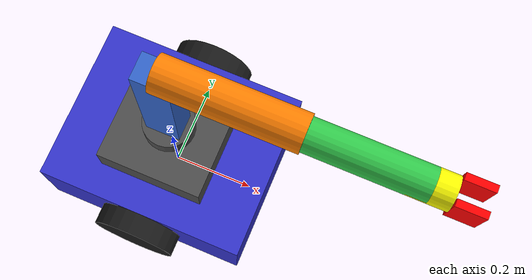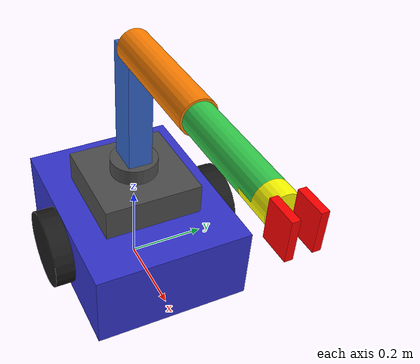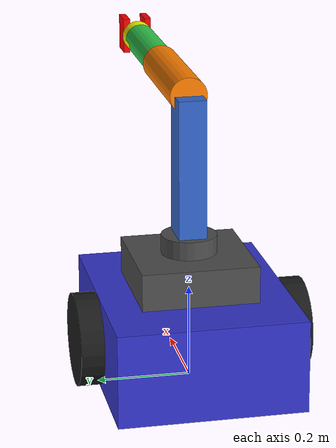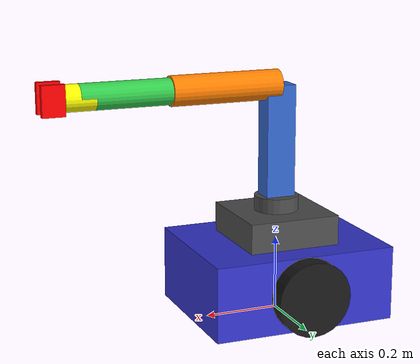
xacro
<?xml version="1.0"?>
<robot xmlns:xacro="http://ros.org/wiki/xacro" name="mobile_simple_arm">

  <!-- Inclure le bras -->
  <xacro:include filename="$(find mobile_manipulator_sim)/urdf/simple_arm.urdf.xacro"/>

  <!-- Base footprint -->
  <link name="base_footprint">
    <inertial>
      <mass value="0.1"/>
      <inertia ixx="0.001" ixy="0" ixz="0" iyy="0.001" iyz="0" izz="0.001"/>
    </inertial>
  </link>

  <!-- Base link -->
  <link name="base_link">
    <visual>
      <geometry>
        <box size="0.5 0.4 0.2"/>
      </geometry>
      <material name="blue">
        <color rgba="0.2 0.2 0.8 1.0"/>
      </material>
    </visual>
    <collision>
      <geometry>
        <box size="0.5 0.4 0.2"/>
      </geometry>
    </collision>
    <inertial>
      <mass value="50.0"/>
      <origin xyz="0 0 0"/>
      <inertia ixx="5.0" ixy="0.0" ixz="0.0" iyy="5.0" iyz="0.0" izz="5.0"/>
    </inertial>
  </link>

  <joint name="base_joint" type="fixed">
    <parent link="base_footprint"/>
    <child link="base_link"/>
    <origin xyz="0 0 0.1" rpy="0 0 0"/>
  </joint>

  <!-- Roue gauche -->
  <link name="left_wheel">
    <visual>
      <geometry>
        <cylinder radius="0.1" length="0.05"/>
      </geometry>
      <material name="black">
        <color rgba="0.1 0.1 0.1 1.0"/>
      </material>
    </visual>
    <collision>
      <geometry>
        <cylinder radius="0.1" length="0.05"/>
      </geometry>
    </collision>
    <inertial>
      <mass value="1.0"/>
      <inertia ixx="0.0051" ixy="0.0" ixz="0.0" iyy="0.0051" iyz="0.0" izz="0.01"/>
    </inertial>
  </link>

  <joint name="left_wheel_joint" type="fixed">
    <parent link="base_link"/>
    <child link="left_wheel"/>
    <origin xyz="0 0.225 0" rpy="-1.5707963267948966 0 0"/>
  </joint>

  <!-- Roue droite -->
  <link name="right_wheel">
    <visual>
      <geometry>
        <cylinder radius="0.1" length="0.05"/>
      </geometry>
      <material name="black">
        <color rgba="0.1 0.1 0.1 1.0"/>
      </material>
    </visual>
    <collision>
      <geometry>
        <cylinder radius="0.1" length="0.05"/>
      </geometry>
    </collision>
    <inertial>
      <mass value="1.0"/>
      <inertia ixx="0.0051" ixy="0.0" ixz="0.0" iyy="0.0051" iyz="0.0" izz="0.01"/>
    </inertial>
  </link>

  <joint name="right_wheel_joint" type="fixed">
    <parent link="base_link"/>
    <child link="right_wheel"/>
    <origin xyz="0 -0.225 0" rpy="-1.5707963267948966 0 0"/>
  </joint>

  <!-- Roue folle -->
  <link name="caster_wheel">
    <visual>
      <geometry>
        <sphere radius="0.05"/>
      </geometry>
      <material name="grey">
        <color rgba="0.5 0.5 0.5 1.0"/>
      </material>
    </visual>
    <collision>
      <geometry>
        <sphere radius="0.05"/>
      </geometry>
    </collision>
    <inertial>
      <mass value="0.5"/>
      <inertia ixx="0.0005" ixy="0.0" ixz="0.0" iyy="0.0005" iyz="0.0" izz="0.0005"/>
    </inertial>
  </link>

  <joint name="caster_joint" type="fixed">
    <parent link="base_link"/>
    <child link="caster_wheel"/>
    <origin xyz="0.2 0 -0.05" rpy="0 0 0"/>
  </joint>

  <!-- Plateforme pour le bras -->
  <link name="arm_mount_plate">
    <visual>
      <geometry>
        <box size="0.25 0.25 0.08"/>
      </geometry>
      <material name="dark_grey">
        <color rgba="0.3 0.3 0.3 1.0"/>
      </material>
    </visual>
    <collision>
      <geometry>
        <box size="0.25 0.25 0.08"/>
      </geometry>
    </collision>
    <inertial>
      <mass value="3.0"/>
      <inertia ixx="0.05" ixy="0.0" ixz="0.0" iyy="0.05" iyz="0.0" izz="0.05"/>
    </inertial>
  </link>

  <joint name="arm_mount_joint" type="fixed">
    <parent link="base_link"/>
    <child link="arm_mount_plate"/>
    <origin xyz="0 0 0.14" rpy="0 0 0"/>
  </joint>

  <!-- Instancier le bras -->
  <xacro:simple_arm prefix="" parent="arm_mount_plate">
    <origin xyz="0 0 0.04" rpy="0 0 0"/>
  </xacro:simple_arm>

  <!-- Gazebo colors -->
  <gazebo reference="base_link">
    <material>Gazebo/Blue</material>
    <mu1>1.0</mu1>
    <mu2>1.0</mu2>
    <kp>10000000.0</kp>
    <kd>100.0</kd>
  </gazebo>

  <gazebo reference="arm_mount_plate">
    <material>Gazebo/DarkGrey</material>
  </gazebo>

  <gazebo reference="left_wheel">
    <material>Gazebo/Black</material>
    <mu1>1.0</mu1>
    <mu2>1.0</mu2>
  </gazebo>

  <gazebo reference="right_wheel">
    <material>Gazebo/Black</material>
    <mu1>1.0</mu1>
    <mu2>1.0</mu2>
  </gazebo>

  <gazebo reference="caster_wheel">
    <material>Gazebo/Grey</material>
    <mu1>1.0</mu1>
    <mu2>1.0</mu2>
  </gazebo>

</robot>

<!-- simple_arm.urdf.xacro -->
<robot xmlns:xacro="http://ros.org/wiki/xacro">

  <xacro:macro name="simple_arm" params="prefix parent *origin">

    <!-- Base du bras -->
    <joint name="${prefix}arm_base_joint" type="fixed">
      <xacro:insert_block name="origin"/>
      <parent link="${parent}"/>
      <child link="${prefix}arm_base_link"/>
    </joint>

    <link name="${prefix}arm_base_link">
      <visual>
        <geometry>
          <cylinder radius="0.06" length="0.08"/>
        </geometry>
        <material name="dark_grey">
          <color rgba="0.3 0.3 0.3 1.0"/>
        </material>
      </visual>
      <collision>
        <geometry>
          <cylinder radius="0.06" length="0.08"/>
        </geometry>
      </collision>
      <inertial>
        <mass value="2.0"/>
        <inertia ixx="0.01" ixy="0.0" ixz="0.0" iyy="0.01" iyz="0.0" izz="0.01"/>
      </inertial>
    </link>

    <!-- Joint rotation base -->
    <joint name="${prefix}shoulder_pan_joint" type="revolute">
      <parent link="${prefix}arm_base_link"/>
      <child link="${prefix}shoulder_link"/>
      <origin xyz="0 0 0.04" rpy="0 0 0"/>
      <axis xyz="0 0 1"/>
      <limit lower="-3.14" upper="3.14" effort="50.0" velocity="1.0"/>
      <dynamics damping="0.7"/>
    </joint>

    <!-- Épaule -->
    <link name="${prefix}shoulder_link">
      <visual>
        <origin xyz="0 0 0.15" rpy="0 0 0"/>
        <geometry>
          <box size="0.08 0.06 0.3"/>
        </geometry>
        <material name="blue">
          <color rgba="0.2 0.4 0.8 1.0"/>
        </material>
      </visual>
      <collision>
        <origin xyz="0 0 0.15" rpy="0 0 0"/>
        <geometry>
          <box size="0.08 0.06 0.3"/>
        </geometry>
      </collision>
      <inertial>
        <mass value="3.0"/>
        <origin xyz="0 0 0.15"/>
        <inertia ixx="0.03" ixy="0.0" ixz="0.0" iyy="0.03" iyz="0.0" izz="0.005"/>
      </inertial>
    </link>

    <!-- Joint épaule -->
    <joint name="${prefix}shoulder_lift_joint" type="revolute">
      <parent link="${prefix}shoulder_link"/>
      <child link="${prefix}upper_arm_link"/>
      <origin xyz="0 0 0.3" rpy="0 0 0"/>
      <axis xyz="0 1 0"/>
      <limit lower="-1.57" upper="1.57" effort="50.0" velocity="1.0"/>
      <dynamics damping="0.7"/>
    </joint>

    <!-- Bras supérieur -->
    <link name="${prefix}upper_arm_link">
      <visual>
        <origin xyz="0.15 0 0" rpy="0 1.5707 0"/>
        <geometry>
          <cylinder radius="0.04" length="0.30"/>
        </geometry>
        <material name="orange">
          <color rgba="1.0 0.5 0.0 1.0"/>
        </material>
      </visual>
      <collision>
        <origin xyz="0.15 0 0" rpy="0 1.5707 0"/>
        <geometry>
          <cylinder radius="0.04" length="0.30"/>
        </geometry>
      </collision>
      <inertial>
        <mass value="2.5"/>
        <origin xyz="0.15 0 0"/>
        <inertia ixx="0.01" ixy="0.0" ixz="0.0" iyy="0.02" iyz="0.0" izz="0.02"/>
      </inertial>
    </link>

    <!-- Joint coude -->
    <joint name="${prefix}elbow_joint" type="revolute">
      <parent link="${prefix}upper_arm_link"/>
      <child link="${prefix}forearm_link"/>
      <origin xyz="0.30 0 0" rpy="0 0 0"/>
      <axis xyz="0 1 0"/>
      <limit lower="-1.57" upper="1.57" effort="30.0" velocity="1.0"/>
      <dynamics damping="0.5"/>
    </joint>

    <!-- Avant-bras -->
    <link name="${prefix}forearm_link">
      <visual>
        <origin xyz="0.12 0 0" rpy="0 1.5707 0"/>
        <geometry>
          <cylinder radius="0.035" length="0.24"/>
        </geometry>
        <material name="green">
          <color rgba="0.2 0.8 0.3 1.0"/>
        </material>
      </visual>
      <collision>
        <origin xyz="0.12 0 0" rpy="0 1.5707 0"/>
        <geometry>
          <cylinder radius="0.035" length="0.24"/>
        </geometry>
      </collision>
      <inertial>
        <mass value="1.5"/>
        <origin xyz="0.12 0 0"/>
        <inertia ixx="0.005" ixy="0.0" ixz="0.0" iyy="0.01" iyz="0.0" izz="0.01"/>
      </inertial>
    </link>

    <!-- Joint poignet -->
    <joint name="${prefix}wrist_joint" type="revolute">
      <parent link="${prefix}forearm_link"/>
      <child link="${prefix}wrist_link"/>
      <origin xyz="0.24 0 0" rpy="0 0 0"/>
      <axis xyz="1 0 0"/>
      <limit lower="-1.57" upper="1.57" effort="20.0" velocity="1.0"/>
      <dynamics damping="0.5"/>
    </joint>

    <!-- Poignet -->
    <link name="${prefix}wrist_link">
      <visual>
        <origin xyz="0 0 0" rpy="0 1.5707 0"/>
        <geometry>
          <cylinder radius="0.035" length="0.08"/>
        </geometry>
        <material name="yellow">
          <color rgba="1.0 1.0 0.0 1.0"/>
        </material>
      </visual>
      <collision>
        <origin xyz="0 0 0" rpy="0 1.5707 0"/>
        <geometry>
          <cylinder radius="0.035" length="0.08"/>
        </geometry>
      </collision>
      <inertial>
        <mass value="0.8"/>
        <inertia ixx="0.001" ixy="0" ixz="0" iyy="0.001" iyz="0" izz="0.001"/>
      </inertial>
    </link>

    <!-- Gripper gauche -->
    <joint name="${prefix}finger_left_joint" type="prismatic">
      <parent link="${prefix}wrist_link"/>
      <child link="${prefix}finger_left"/>
      <origin xyz="0.04 0.025 0" rpy="0 0 0"/>
      <axis xyz="0 1 0"/>
      <limit lower="0.0" upper="0.03" effort="10.0" velocity="0.5"/>
      <dynamics damping="0.3"/>
    </joint>

    <link name="${prefix}finger_left">
      <visual>
        <origin xyz="0.03 0 0" rpy="0 0 0"/>
        <geometry>
          <box size="0.06 0.015 0.08"/>
        </geometry>
        <material name="red">
          <color rgba="1.0 0.0 0.0 1.0"/>
        </material>
      </visual>
      <collision>
        <origin xyz="0.03 0 0" rpy="0 0 0"/>
        <geometry>
          <box size="0.06 0.015 0.08"/>
        </geometry>
      </collision>
      <inertial>
        <mass value="0.1"/>
        <origin xyz="0.03 0 0"/>
        <inertia ixx="0.0001" ixy="0" ixz="0" iyy="0.0001" iyz="0" izz="0.0001"/>
      </inertial>
    </link>

    <!-- Gripper droit -->
    <joint name="${prefix}finger_right_joint" type="prismatic">
      <parent link="${prefix}wrist_link"/>
      <child link="${prefix}finger_right"/>
      <origin xyz="0.04 -0.025 0" rpy="0 0 0"/>
      <axis xyz="0 1 0"/>
      <limit lower="-0.03" upper="0.0" effort="10.0" velocity="0.5"/>
      <dynamics damping="0.3"/>
    </joint>

    <link name="${prefix}finger_right">
      <visual>
        <origin xyz="0.03 0 0" rpy="0 0 0"/>
        <geometry>
          <box size="0.06 0.015 0.08"/>
        </geometry>
        <material name="red">
          <color rgba="1.0 0.0 0.0 1.0"/>
        </material>
      </visual>
      <collision>
        <origin xyz="0.03 0 0" rpy="0 0 0"/>
        <geometry>
          <box size="0.06 0.015 0.08"/>
        </geometry>
      </collision>
      <inertial>
        <mass value="0.1"/>
        <origin xyz="0.03 0 0"/>
        <inertia ixx="0.0001" ixy="0" ixz="0" iyy="0.0001" iyz="0" izz="0.0001"/>
      </inertial>
    </link>

    <!-- Gazebo colors -->
    <gazebo reference="${prefix}arm_base_link">
      <material>Gazebo/DarkGrey</material>
    </gazebo>
    <gazebo reference="${prefix}shoulder_link">
      <material>Gazebo/Blue</material>
    </gazebo>
    <gazebo reference="${prefix}upper_arm_link">
      <material>Gazebo/Orange</material>
    </gazebo>
    <gazebo reference="${prefix}forearm_link">
      <material>Gazebo/Green</material>
    </gazebo>
    <gazebo reference="${prefix}wrist_link">
      <material>Gazebo/Yellow</material>
    </gazebo>
    <gazebo reference="${prefix}finger_left">
      <material>Gazebo/Red</material>
    </gazebo>
    <gazebo reference="${prefix}finger_right">
      <material>Gazebo/Red</material>
    </gazebo>

  </xacro:macro>

</robot>
